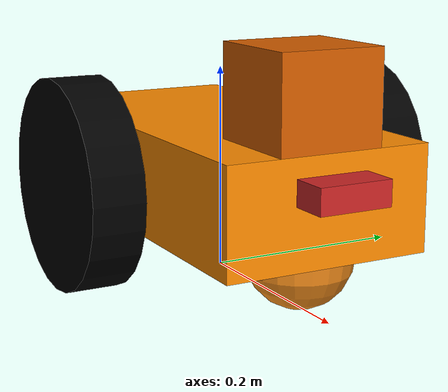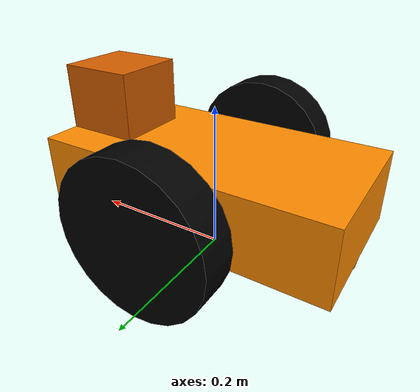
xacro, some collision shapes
<?xml version='1.0'?>

<robot name="my_robot" xmlns:xacro="http://www.ros.org/wiki/xacro">

  <!-- PARAMETERS :: PARAMETERS :: PARAMETERS :: PARAMETERS -->
  <xacro:property name="chassis_width" value="0.2"/>
  <xacro:property name="chassis_length" value="0.4"/>
  <xacro:property name="chassis_height" value="0.1"/>

  <xacro:property name="wheel_radius" value="0.10"/>
  <xacro:property name="wheel_width" value="0.05"/>

  <xacro:property name="caster_radius" value="0.05"/>
  <xacro:property name="wheel_separation"
		  value="${chassis_width + 1*wheel_width + 0.05}"/>
  <!-- xacro:property name="" value=""/ -->

  <!-- MACROS :: MACROS :: MACROS :: MACROS :: MACROS -->
  <xacro:macro name="unit_inertia" params="mass factor">
    <inertial>
      <mass value="${mass}"/>
      <inertia ixx="${factor}" iyy="${factor}" izz="${factor}"
	       ixy="0.0" ixz="0.0" iyz="0.0" />
      <origin xyz="0.0 0 0" rpy=" 0 0 0"/>
    </inertial>
  </xacro:macro>

  <!-- GAZEBO COLORS :: GAZEBO COLORS :: GAZEBO COLORS -->
  <gazebo reference="RWheel" >
    <material>Gazebo/Black</material>
  </gazebo>
  <gazebo reference="LWheel" >
    <material>Gazebo/Black</material>
  </gazebo>
  <gazebo reference="camera" >
    <material>Gazebo/Red</material>
  </gazebo>
  <gazebo reference="Chassis" >
    <material>Gazebo/Orange</material>
  </gazebo>

  <!-- This must follow definition of parameters not precede them -->
  <xacro:include filename="$(find my_robot)/urdf/my_robot.gazebo" />

  <!-- JOINTS :: JOINTS :: JOINTS :: JOINTS :: JOINTS :: JOINTS -->
  <joint name="robot_footprint_joint" type="fixed">
    <origin xyz="0.0 0.0 0.1" rpy="0 0 0" />
    <parent link="robot_footprint"/>
    <child link="Chassis" />
  </joint>

  <joint name="left_wheel_hinge" type="continuous">
    <origin xyz="0.0 ${wheel_separation / 2.0} 0.0" rpy="0 0 0" />
    <child link="LWheel"/>
    <parent link="Chassis" />
    <axis xyz="0 1 0" rpy="0 0 0" />
  </joint>

  <!-- 'continuous' joint type has no max/min limits -->
  <joint name="right_wheel_hinge" type="continuous">

    <child link="RWheel"/>
    <parent link="Chassis" />

    <!-- The child link relative to the parent -->
    <origin xyz="0.0 ${-1*wheel_separation / 2.0} 0.0" rpy="0 0 0" />

    <!-- Axis of revolution in the child frame -->
    <axis xyz="0 1 0" rpy="0 0 0" />
  </joint>

  <joint name="Cam_joint" type="fixed">
    <origin xyz="0.219 0 0.02" rpy="0 0 0" />
    <child link="camera"/>
    <parent link="Chassis" />
    <!-- axis is not used with fixed joint types -->
  </joint>

  <joint name="Las_joint" type="fixed">
    <origin xyz="0.15 0 0.087" rpy="0 0 0" />
    <child link="hokuyo"/>
    <parent link="Chassis" />
    <!-- axis is not used with fixed joint types -->
  </joint>

  <!-- Depth camera frame :: note z-axis in direciton of sensing -->
  <joint name="Depth_joint" type="fixed">
    <origin xyz="0 0 0" rpy="-1.5707 0 -1.5707" />
    <child link="Depth_link"/>
    <parent link="camera" />
    <!-- axis is not used with fixed joint types -->
  </joint>

  <!-- Depth camera link (fictitiou) -->
  <link name="Depth_link">
  </link>

  <!-- LINKS :: LINKS :: LINKS :: LINKS :: LINKS :: LINKS -->
  <link name="robot_footprint"></link>

  <!-- Chassis -->
  <link name='Chassis'>

    <xacro:unit_inertia mass="15.0" factor="1.0"/>

    <visual name='Chassis_visual'>
      <origin xyz="0 0 0" rpy=" 0 0 0"/>
      <geometry>
	<box size="${chassis_length} ${chassis_width} ${chassis_height}"/>
      </geometry>
      <material name="orange">
	<color rgba="1.0 0.55 0 1"/>
      </material>
    </visual>

    <collision name='collision'>
      <origin xyz="0 0 0" rpy=" 0 0 0"/>
      <geometry>
	<box size="${chassis_length} ${chassis_width} ${chassis_height}"/>
      </geometry>
    </collision>

    <!-- REAR CASTER -->
    <collision name='back_caster_collision'>
      <origin xyz="-0.15 0 -0.05" rpy=" 0 0 0"/>
      <geometry>
	<sphere radius="${caster_radius}"/>
      </geometry>
    </collision>

    <visual name='back_caster_visual'>
      <origin xyz="-0.15 0 -0.05" rpy=" 0 0 0"/>
      <geometry>
	<sphere radius="${caster_radius}"/>
      </geometry>
    </visual>

    <!-- FRONT CASTER -->
    <collision name='front_caster_collision'>
      <origin xyz="0.15 0 -0.05" rpy=" 0 0 0"/>
      <geometry>
	<sphere radius="${caster_radius}"/>
      </geometry>
    </collision>

    <visual name='front_caster_visual'>
      <origin xyz="0.15 0 -0.05" rpy=" 0 0 0"/>
      <geometry>
	<sphere radius="${caster_radius}"/>
      </geometry>
    </visual>

  </link>

  <!-- Left Wheel -->
  <link name="LWheel">

    <xacro:unit_inertia mass="3.0" factor="0.1"/>

    <visual name='LWheel_visual'>
      <origin xyz="0 0 0" rpy="0 1.5707 1.5707"/>
      <geometry>
	<cylinder radius="${wheel_radius}" length="${wheel_width}" />
      </geometry>
      <material name="tire">
	<color rgba="0 0 0 1"/>
      </material>
    </visual>

    <collision name='LWheel_collision'>
      <origin xyz="0 0 0" rpy="0 1.5707 1.5707"/>
      <geometry>
	<cylinder radius="${wheel_radius}" length="${wheel_width}" />
      </geometry>
    </collision>

  </link>

  <!-- Left Wheel -->
  <link name="RWheel">

    <xacro:unit_inertia mass="3.0" factor="0.1"/>

    <visual name='RWheel_visual'>
      <origin xyz="0 0 0" rpy="0 1.5707 1.5707"/>
      <geometry>
	<cylinder radius="${wheel_radius}" length="${wheel_width}" />
      </geometry>
      <material name="tire">
	<color rgba="0 0 0 1"/>
      </material>
    </visual>

    <collision name='RWheel_collision'>
      <origin xyz="0 0 0" rpy="0 1.5707 1.5707"/>
      <geometry>
	<cylinder radius="${wheel_radius}" length="${wheel_width}" />
      </geometry>
    </collision>

  </link>

  <!-- SENSORS :: SENSORS :: SENSORS :: SENSORS :: SENSORS :: SENSORS -->
  <link name="hokuyo">
    <xacro:unit_inertia mass="0.02" factor="0.002"/>
    <collision>
      <origin xyz="0 0 0" rpy="0 0 0"  />
      <geometry>
	<box size="0.1 0.1 0.1" />
      </geometry>
    </collision>
    <visual>
      <origin xyz="0 0 0" rpy="0 0 0" />
      <geometry>
	<mesh filename="package://my_robot/meshes/hokuyo.dae"/>
      </geometry>
    </visual>
  </link>

  <link name="camera">
    <xacro:unit_inertia mass="0.08" factor="0.01"/>
    <visual name='camera_visual'>
      <origin xyz="0 0 0" rpy="0 0 0"/>
      <geometry>
	<box size="0.036 0.07 0.024" />
      </geometry>
      <!-- material name="cyan"/ -->
    </visual>
    <collision name='camera_collision'>
      <origin xyz="0 0 0" rpy="0 0 0"/>
      <geometry>
	<box size="0.038 0.08 0.055" />
      </geometry>
    </collision>
  </link>

</robot>
